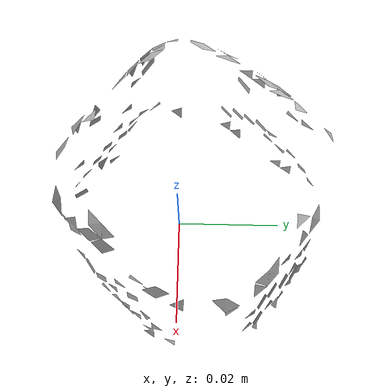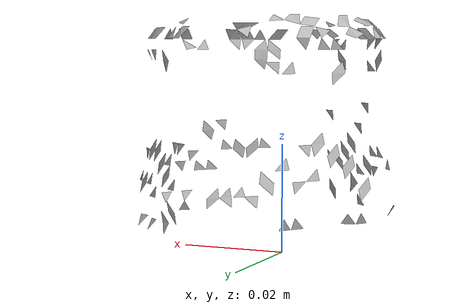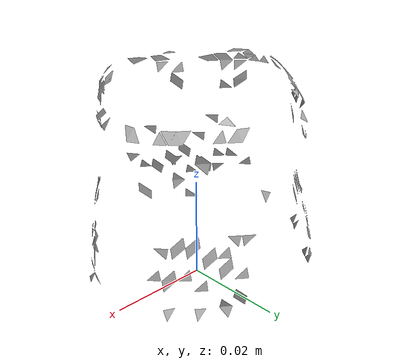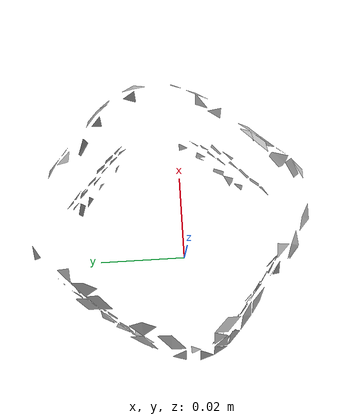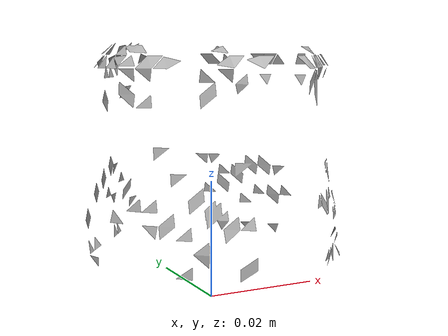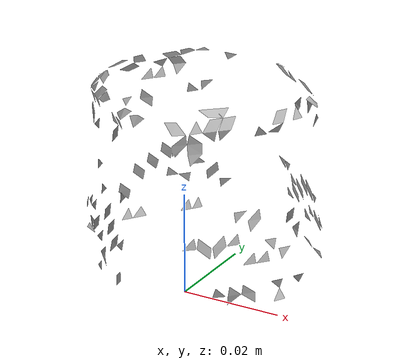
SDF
<?xml version='1.0'?>
<sdf version="1.4">
  <model name="l_lego_duplo">
    <static>false</static>
    <link name="link">
      <inertial>
        <pose>0.002110586701104136 0.002944208566052653 0.025260479460871434 0.47435214081088006 -1.5317225814589228 -2.6083883318580368</pose>
        <mass>4.6457166155599234e-05</mass>
        <inertia>
          <ixx>9.802524578231006e-09</ixx>
          <ixy>5.369558829243861e-26</ixy>
          <ixz>5.362212724282823e-25</ixz>
          <iyy>7.751042530879747e-09</iyy>
          <iyz>1.5483259684602766e-24</iyz>
          <izz>7.668183946823543e-09</izz>
        </inertia>
      </inertial>
      <collision name="collision">
        <geometry>
          <mesh>
            <!-- Use a downsampled mesh for collisions -->
            <uri>model://073-l_lego_duplo/tsdf/textured.obj</uri>
	        </mesh>
        </geometry>
        <surface>
      </surface>
      </collision>
      <visual name="visual">
        <geometry>
          <mesh>
            <uri>model://073-l_lego_duplo/tsdf/textured.obj</uri>
	        </mesh>
        </geometry>
        <material>
          <script>
            <uri>model://073-l_lego_duplo/l_lego_duplo.material</uri>
            <name>l_lego_duplo</name>
          </script>
        </material>
      </visual>
    </link>
  </model>
</sdf>
